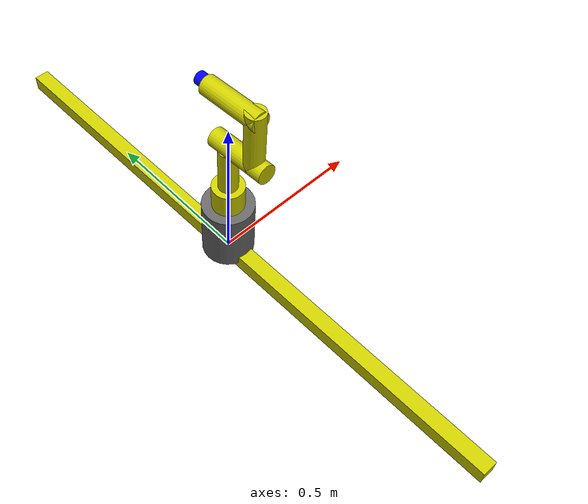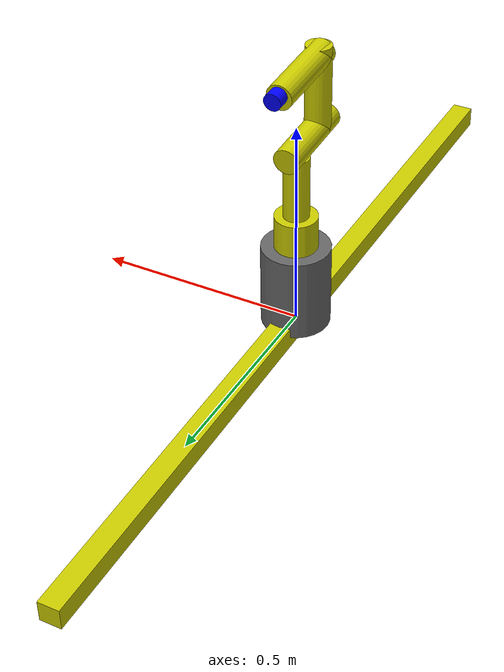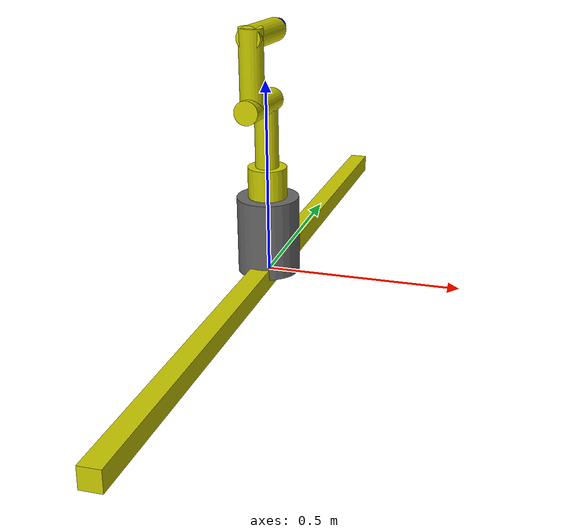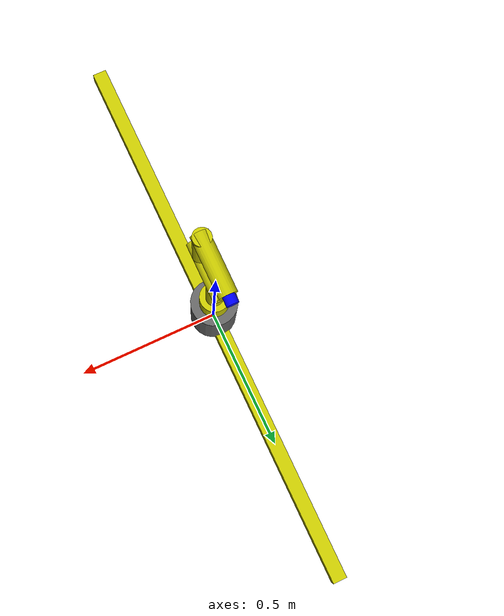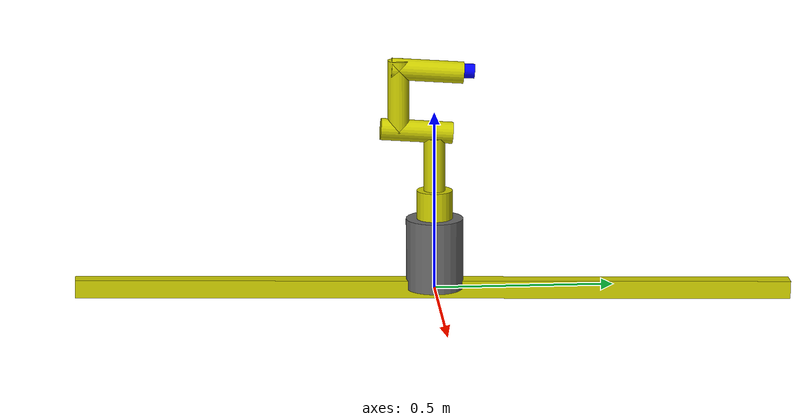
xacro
<?xml version="1.0"?>

<robot name="kuka_ex6" xmlns:xacro="http://wiki.ros.org/xacro">
    <xacro:include filename="$(find kuka_ex6)/urdf/kuka_ex6_macro.xacro" />

		<xacro:kuka_link name="binario">
			<geometry>
				<box size="0.05 0.05 2"/>
			</geometry>
			<origin xyz="0 0 0" rpy="1.55 0 0"/>
		</xacro:kuka_link>

		<xacro:kuka_joint
			name="joint0"
			type="prismatic"
			parent="binario"
			child="base_link">
			<origin xyz="0 0 0" />
			<axis xyz="0 1 0"/>
			<limit effort="300" velocity ="1" lower="-0.90" upper="0.90"/>
		</xacro:kuka_joint>

		<xacro:base_link_macro
			base_link_name="base_link">
		</xacro:base_link_macro>

		<xacro:kuka_joint
			name="joint1"
			type="revolute"
			parent="base_link"
			child="link1">
			<origin xyz="0 0 0.23" />
			<axis xyz="0 0 1"/>
			<limit effort="176" velocity ="1.71" lower="${-170 * 3.14 / 180}" upper="${170 * 3.14 / 180}"/>
		</xacro:kuka_joint>
		<xacro:kuka_link name="link1">
			<geometry>
				<cylinder length="0.1" radius="0.05"/>
			</geometry>
			<origin xyz="0 0 0" rpy="0 0 0.09"/>
		</xacro:kuka_link>
		<xacro:kuka_joint
			name="joint2"
			type="prismatic"
			parent="link1"
			child="link2">
			<origin xyz="0 0 0.1" />
			<axis xyz="0 0 1"/>
			<limit effort="300" velocity ="1.71" lower="-0.08" upper="0.08"/>
		</xacro:kuka_joint>
		<xacro:kuka_link name="link2">
			<geometry>
				<cylinder length="0.2" radius="0.03"/>
			</geometry>
			<origin xyz="0 0 0" rpy="0 0 0"/>
		</xacro:kuka_link>
		<xacro:kuka_joint
			name="joint3"
			type="revolute"
			parent="link2"
			child="link3">
			<origin xyz="0 -0.05 0.12" />
			<axis xyz="0 -1 0"/>
			<limit effort="110" velocity ="2.26" lower="${-120 * 3.14 / 180}" upper="1.90"/>
		</xacro:kuka_joint>
		<xacro:kuka_link name="link3">
			<geometry>
				<cylinder length="0.2" radius="0.03"/>
			</geometry>
			<origin xyz="0 0 0" rpy="1.5 0 0"/>
		</xacro:kuka_link>
		<xacro:kuka_joint
			name="joint4"
			type="revolute"
			parent="link3"
			child="link4">
			<origin xyz="0 -0.05 0.1" />
			<axis xyz="0 0 1"/>
			<limit effort="110" velocity ="2.44" lower="${-170 * 3.14 / 180}" upper="${170 * 3.14 / 180}"/>
		</xacro:kuka_joint>
		<xacro:kuka_link name="link4">
			<geometry>
				<cylinder length="0.2" radius="0.03"/>
			</geometry>
			<origin xyz="0 0 0" rpy="0 0 0"/>
		</xacro:kuka_link>
		<xacro:kuka_joint
			name="joint5"
			type="revolute"
			parent="link4"
			child="link5">
			<origin xyz="0 0.08 0.07" />
			<axis xyz="1 0 0"/>
			<limit effort="40" velocity ="3.14" lower="-0.03" upper="0.28"/>
		</xacro:kuka_joint>
		<xacro:kuka_link name="link5">
			<geometry>
				<cylinder length="0.2" radius="0.03"/>
			</geometry>
			<origin xyz="0 0 0" rpy="1.5 0 0"/>
		</xacro:kuka_link>
		<xacro:kuka_joint
			name="joint6"
			type="prismatic"
			parent="link5"
			child="end_effector">
			<origin xyz="0 0.08 0" />
			<axis xyz="0 1 0"/>
			<limit effort="40" velocity ="3.14" lower="-0.02" upper="0.03"/>
		</xacro:kuka_joint>
		<xacro:end_effector name="end_effector">
			<geometry>
				<cylinder length="0.1" radius="0.02"/>
			</geometry>
			<origin xyz="0 0 0" rpy="1.5 0 0"/>
		</xacro:end_effector>
</robot>

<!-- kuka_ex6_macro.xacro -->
<robot name="kuka_ex6_macro" xmlns:xacro="http://wiki.ros.org/xacro">
	<xacro:macro name="base_link_macro" params="base_link_name">
		<link name="${base_link_name}">
			<visual>
				<geometry>
					<cylinder length="0.2" radius="0.08"/>
				</geometry>
				<origin rpy="0 0 0" xyz="0 0 0.1"/>
				<material name="grey">
						<color rgba="0.4 0.4 0.4 1.0"/>
				</material>
			</visual>
			<collision>
				<geometry>
					<cylinder length="0.5" radius="0.08"/>
				</geometry>
			<origin rpy="0 0 0" xyz="0 0 0"/>
			</collision>
			<inertial>
				<mass value="1"/>
					<inertia ixx="1.0" ixy="0.0" ixz="0.0" iyy="1.0" iyz="0.0" izz="1.0"/>
			</inertial>
		</link>
	</xacro:macro>
	<xacro:macro name="kuka_joint" params="name type parent child *origin *axis *limit">
		<joint name="${name}" type="${type}">
			<parent link="${parent}" />
			<child link="${child}" />
			<xacro:insert_block name="origin" />
			<xacro:insert_block name="axis" />
			<xacro:insert_block name = "limit" />
			<material name="yellow">
				<color rgba="0.8 0.8 0.0 1.0"/>
			</material>
		 	<dynamics damping="50" friction="1"/>
		</joint>
	</xacro:macro>
	<xacro:macro name="kuka_link" params="name *geometry *origin">
		<link name="${name}">
			<visual>
				<xacro:insert_block name="geometry" />
				<xacro:insert_block name="origin" />
		   		<material name="yellow">
		     			<color rgba="0.8 0.8 0.0 1.0"/>
		    		</material>
		  	</visual>
		 <collision>
			<xacro:insert_block name="geometry" />
			<xacro:insert_block name="origin" />
		</collision>
			<inertial>
				<mass value="1"/>
					<inertia ixx="1.0" ixy="0.0" ixz="0.0" iyy="1.0" iyz="0.0" izz="1.0"/>
		  	</inertial>
	  	</link>
	</xacro:macro>
	<xacro:macro name="end_effector" params="name *geometry *origin">
		<link name="${name}">
			<visual>
				<xacro:insert_block name="geometry" />
				<xacro:insert_block name="origin" />
		    		<material name="blue">
		    	 		<color rgba="0.0 0.0 1.0 1.0"/>
		    		</material>
		  	</visual>
		  	<collision>
				<xacro:insert_block name="geometry" />
				<xacro:insert_block name="origin" />
			</collision>
			<inertial>
				<mass value="0.5"/>
					<inertia ixx="1.0" ixy="0.0" ixz="0.0" iyy="1.0" iyz="0.0" izz="1.0"/>
		  	</inertial>
	  	</link>
	</xacro:macro>
	<xacro:macro name="slide" params="name *geometry *origin">
		<link name="${name}">
			<visual>
				<xacro:insert_block name="geometry" />
				<xacro:insert_block name="origin" />
		    		<material name="blue">
		    	 		<color rgba="0.0 0.0 1.0 1.0"/>
		    		</material>
		  	</visual>
		  	<collision>
				<xacro:insert_block name="geometry" />
				<xacro:insert_block name="origin" />
			</collision>
			<inertial>
				<mass value="1"/>
					<inertia ixx="1.0" ixy="0.0" ixz="0.0" iyy="1.0" iyz="0.0" izz="1.0"/>
		  	</inertial>
	  	</link>
	</xacro:macro>
</robot>
